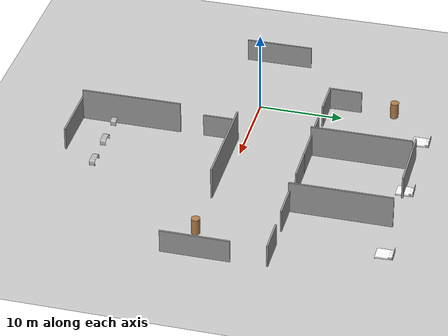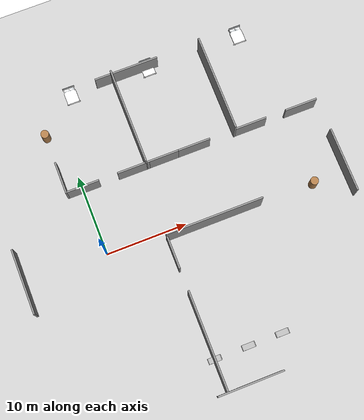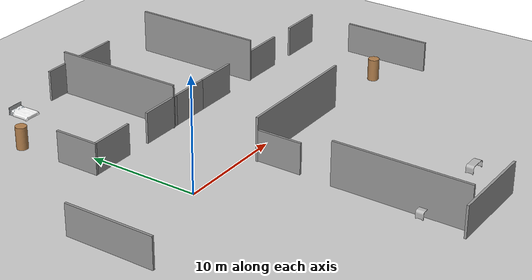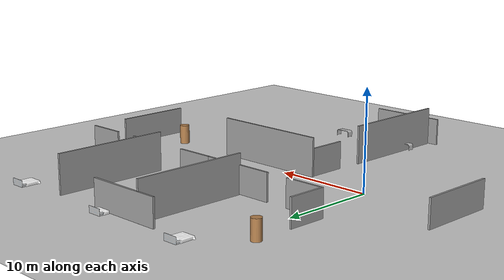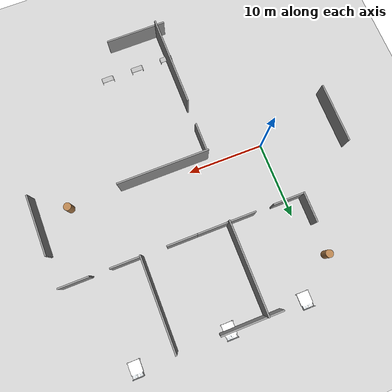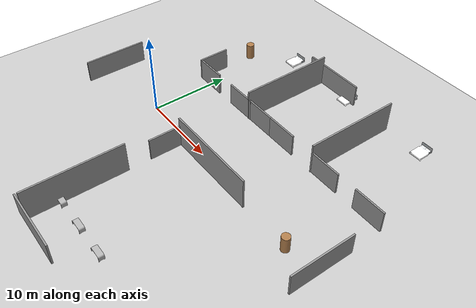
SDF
<sdf version="1.4">
 <world name="default">
  <scene><shadows>0</shadows></scene>
  <physics type="ode">
   <gravity>0 0 -9.81</gravity>
   <ode>
    <solver><type>quick</type><iters>20</iters><sor>1.0</sor></solver>
    <constraints>
     <cfm>0.0</cfm>
     <erp>0.2</erp>
     <contact_max_correcting_vel>100.0</contact_max_correcting_vel>
     <contact_surface_layer>0.0</contact_surface_layer>
    </constraints>
   </ode>
   <real_time_update_rate>1000</real_time_update_rate>
   <max_step_size>0.001</max_step_size>
  </physics>
  <include><uri>model://sun</uri></include>
  <include><uri>model://ground_plane</uri></include>
  <include><uri>model://bed</uri><name>bed_1</name><pose>2.5 20.17 0 0 0 0</pose></include>
  <include><uri>model://bed</uri><name>bed_2</name><pose>12.5 20.17 0 0 0 0</pose></include>
  <include><uri>model://bed</uri><name>bed_3</name><pose>24.5 20.17 0 0 0 0</pose></include>
  <include><uri>model://desk</uri><name>desk_1</name><pose>7.3 -16 0 0 0 3.14</pose></include>
  <include><uri>model://desk</uri><name>desk_2</name><pose>11.49 -16 0 0 0 3.14</pose></include>
  <include><uri>model://desk</uri><name>desk_3</name><pose>15.68 -16 0 0 0 3.14</pose></include>
  <include><uri>model://w1</uri><name>w1_bottom</name><pose>-10 0.0 0.0 0 0.0 -1.57</pose></include>
  <include><uri>model://w1</uri><name>w1_left</name><pose>10 20 0.0 0 0.0 0.0</pose></include>
  <include><uri>model://w1</uri><name>w1_top</name><pose>30 0.0 0.0 0 0.0 -1.57</pose></include>
  <include><uri>model://w1</uri><name>w1_right</name><pose>10 -20 0.0 0 0.0 0.0</pose></include>
  <include><uri>model://w3</uri><name>w3_no_room_2</name><pose>-1.9 16 0.0 0 0.0 1.57</pose></include>
  <include><uri>model://w2</uri><name>w3_room_1_1</name><pose>-1.9 10 0.0 0 0.0 1.57</pose></include>
  <include><uri>model://w2</uri><name>w3_room_1_2</name><pose>0.18 8.1 0.0 0 0.0 0.0</pose></include>
  <include><uri>model://w2</uri><name>w3_room_1_3</name><pose>6.5 8.1 0.0 0 0.0 0.0</pose></include>
  <include><uri>model://w4</uri><name>w4_room_1_3</name><pose>8.1 14 0.0 0 0.0 1.57</pose></include>
  <include><uri>model://w2</uri><name>w4_room_2_1</name><pose>10.17 8.11 0.0 0 0.0 0.0</pose></include>
  <include><uri>model://w2</uri><name>w4_room_2_2</name><pose>14.17 8.11 0.0 0 0.0 0.0</pose></include>
  <include><uri>model://w4</uri><name>w4_room_2_3</name><pose>19.4 14 0.0 0 0.0 1.57</pose></include>
  <include><uri>model://w2</uri><name>w4_room_3_1</name><pose>21.4 8.11 0.0 0 0.0 0.0</pose></include>
  <include><uri>model://w2</uri><name>w4_room_3_2</name><pose>27.9 8.11 0.0 0 0.0 0.0</pose></include>
  <include><uri>model://w4</uri><name>w4_warehouse_1</name><pose>7.2 -13.9 0.0 0 0.0 1.57</pose></include>
  <include><uri>model://w4</uri><name>w4_warehouse_2</name><pose>13.14 -1.0 0.0 0 0.0 0.0</pose></include>
  <include><uri>model://w3</uri><name>w4_warehouse_3</name><pose>25.9 -1.0 0.0 0 0.0 0.0</pose></include>
  <include><uri>model://w2</uri><name>w4_warehouse_4</name><pose>7.24 -3.1 0.0 0 0.0 1.57</pose></include>
 </world>
</sdf>

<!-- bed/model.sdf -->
<sdf version='1.6'>
  <model name='bed'>
    <link name='link_0'>
      <pose frame=''>0 0 0 0 -0 0</pose>
      <inertial>
        <pose frame=''>0.2 0 0 0 -0 0</pose>
        <mass>30</mass>
        <inertia>
          <ixx>12.9999948</ixx>
          <ixy>0</ixy>
          <ixz>0</ixz>
          <iyy>7.29999708</iyy>
          <iyz>0</iyz>
          <izz>18.4999926</izz>
        </inertia>
      </inertial>
      <visual name='visual'>
        <pose frame=''>-1.35 -8 -0.3 0 -0 -0</pose>
        <geometry>
          <mesh>
            <uri>file://isr-testbed/bed/bed.dae</uri>
            <scale>1 1 1</scale>
          </mesh>
        </geometry>
        <cast_shadows>1</cast_shadows>
        <transparency>0</transparency>
      </visual>
      <collision name='collision'>
        <laser_retro>0</laser_retro>
        <max_contacts>10</max_contacts>
        <pose frame=''>0.2 0 0 0 -0 0</pose>
        <geometry>
          <box>
            <size>1.6 2.2 0.6</size>
          </box>
        </geometry>
        <surface>
          <friction>
            <ode>
              <mu>1</mu>
              <mu2>1</mu2>
              <fdir1>0 0 0</fdir1>
              <slip1>0</slip1>
              <slip2>0</slip2>
            </ode>
            <torsional>
              <coefficient>1</coefficient>
              <patch_radius>0</patch_radius>
              <surface_radius>0</surface_radius>
              <use_patch_radius>1</use_patch_radius>
              <ode>
                <slip>0</slip>
              </ode>
            </torsional>
          </friction>
          <bounce>
            <restitution_coefficient>0</restitution_coefficient>
            <threshold>1e+06</threshold>
          </bounce>
          <contact>
            <collide_without_contact>0</collide_without_contact>
            <collide_without_contact_bitmask>1</collide_without_contact_bitmask>
            <collide_bitmask>1</collide_bitmask>
            <ode>
              <soft_cfm>0</soft_cfm>
              <soft_erp>0.2</soft_erp>
              <kp>1e+13</kp>
              <kd>1</kd>
              <max_vel>0.01</max_vel>
              <min_depth>0</min_depth>
            </ode>
            <bullet>
              <split_impulse>1</split_impulse>
              <split_impulse_penetration_threshold>-0.01</split_impulse_penetration_threshold>
              <soft_cfm>0</soft_cfm>
              <soft_erp>0.2</soft_erp>
              <kp>1e+13</kp>
              <kd>1</kd>
            </bullet>
          </contact>
        </surface>
      </collision>
    </link>
    <static>0</static> <!-- center has an offset so will not behave properly if this is set to 0 -->
    <allow_auto_disable>1</allow_auto_disable>
  </model>
</sdf>

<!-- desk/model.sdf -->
<sdf version="1.5">
  <model name="desk">
    <static>true</static>
    <link name="link">
      <visual name="visual">
        <geometry>
          <mesh>
            <uri>model://desk/meshes/desk.obj</uri>
            <scale>0.001 0.001 0.001</scale>
          </mesh>
        </geometry>
      </visual>
    </link>
  </model>
</sdf>

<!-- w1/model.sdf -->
<sdf version="1.5">
  <model name="grey_wall">
    <static>true</static>
    <link name="link">
      <pose>0 0 1.4 0 0 0</pose>
      <collision name="collision">
        <geometry>
          <box>
            <size>8 0.2 2.8</size>
          </box>
        </geometry>
      </collision>
      <visual name="visual">
        <cast_shadows>false</cast_shadows>
        <geometry>
          <box>
            <size>8 0.2 2.8</size>
          </box>
        </geometry>
        <material>
          <script>
            <uri>model://w1/materials/scripts</uri>
            <uri>model://w1/materials/textures</uri>
            <name>vrc/grey_wall</name>
          </script>
        </material>
      </visual>
    </link>
  </model>
</sdf>

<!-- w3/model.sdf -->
<sdf version="1.5">
  <model name="grey_wall">
    <static>true</static>
    <link name="link">
      <pose>0 0 1 0 0 0</pose>
      <collision name="collision">
        <geometry>
          <cylinder>
            <radius>0.5</radius>
            <length>2</length>
          </cylinder>
        </geometry>
      </collision>
      <visual name="visual">
        <cast_shadows>false</cast_shadows>
        <geometry>
          <cylinder>
            <radius>0.5</radius>
            <length>2</length>
          </cylinder>
        </geometry>
        <material>
          <script>
            <uri>model://w3/materials/scripts</uri>
            <uri>model://w3/materials/textures</uri>
            <name>vrc/wood</name>
          </script>
        </material>
      </visual>
    </link>
  </model>
</sdf>

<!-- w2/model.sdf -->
<sdf version="1.5">
  <model name="grey_wall">
    <static>true</static>
    <link name="link">
      <pose>0 0 1.4 0 0 0</pose>
      <collision name="collision">
        <geometry>
          <box>
            <size>4 0.2 2.8</size>
          </box>
        </geometry>
      </collision>
      <visual name="visual">
        <cast_shadows>false</cast_shadows>
        <geometry>
          <box>
            <size>4 0.2 2.8</size>
          </box>
        </geometry>
        <material>
          <script>
            <uri>model://w2/materials/scripts</uri>
            <uri>model://w2/materials/textures</uri>
            <name>vrc/grey_wall</name>
          </script>
        </material>
      </visual>
    </link>
  </model>
</sdf>

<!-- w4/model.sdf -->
<sdf version="1.5">
  <model name="grey_wall">
    <static>true</static>
    <link name="link">
      <pose>0 0 1.4 0 0 0</pose>
      <collision name="collision">
        <geometry>
          <box>
            <size>12 0.2 5</size>
          </box>
        </geometry>
      </collision>
      <visual name="visual">
        <cast_shadows>false</cast_shadows>
        <geometry>
          <box>
            <size>12 0.2 5</size>
          </box>
        </geometry>
        <material>
          <script>
            <uri>model://w4/materials/scripts</uri>
            <uri>model://w4/materials/textures</uri>
            <name>vrc/grey_wall</name>
          </script>
        </material>
      </visual>
    </link>
  </model>
</sdf>
